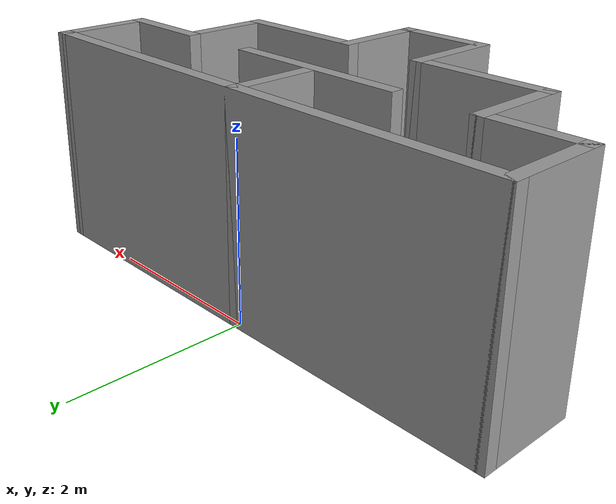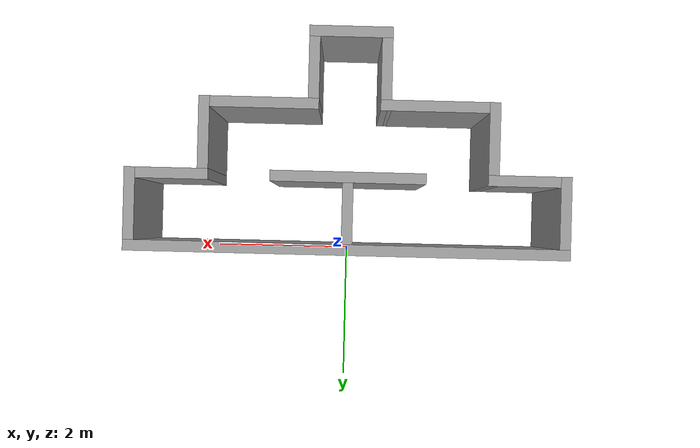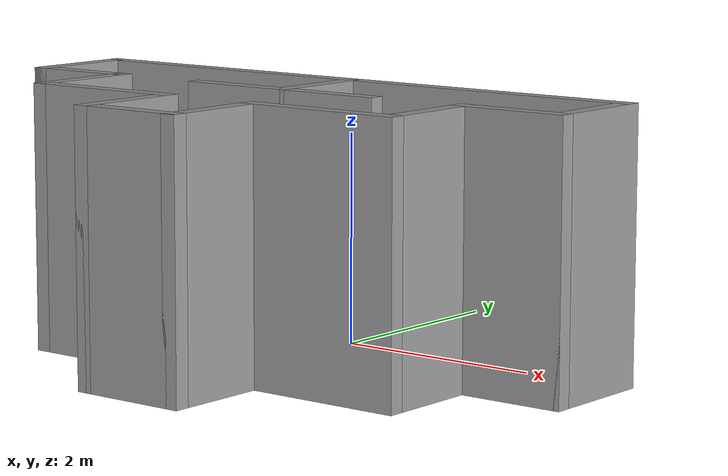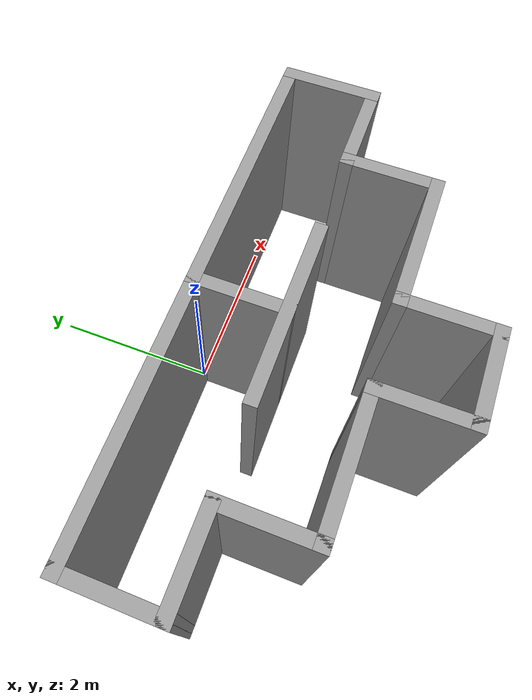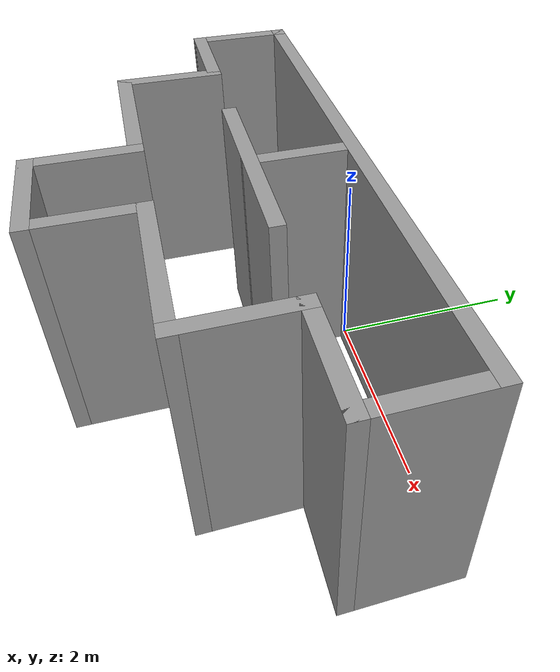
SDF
<?xml version='1.0'?>
<sdf version='1.7'>
  <model name='MiniTMaze'>
    <pose>0 -1.5 0 0 -0 0</pose>
    <link name='Wall_133'>
      <collision name='Wall_133_Collision'>
        <geometry>
          <box>
            <size>6.15 0.15 2.5</size>
          </box>
        </geometry>
        <pose>0 0 1.25 0 -0 0</pose>
      </collision>
      <visual name='Wall_133_Visual'>
        <pose>0 0 1.25 0 -0 0</pose>
        <geometry>
          <box>
            <size>6.15 0.15 2.5</size>
          </box>
        </geometry>
        <material>
          <script>
            <uri>file://media/materials/scripts/gazebo.material</uri>
            <name>Gazebo/Grey</name>
          </script>
          <ambient>1 1 1 1</ambient>
        </material>
        <meta>
          <layer>0</layer>
        </meta>
      </visual>
      <pose>0 1.5 0 0 -0 0</pose>
    </link>
    <link name='Wall_137'>
      <collision name='Wall_137_Collision'>
        <geometry>
          <box>
            <size>1.15 0.15 2.5</size>
          </box>
        </geometry>
        <pose>0 0 1.25 0 -0 0</pose>
      </collision>
      <visual name='Wall_137_Visual'>
        <pose>0 0 1.25 0 -0 0</pose>
        <geometry>
          <box>
            <size>1.15 0.15 2.5</size>
          </box>
        </geometry>
        <material>
          <script>
            <uri>file://media/materials/scripts/gazebo.material</uri>
            <name>Gazebo/Grey</name>
          </script>
          <ambient>1 1 1 1</ambient>
        </material>
        <meta>
          <layer>0</layer>
        </meta>
      </visual>
      <pose>3 1 0 0 -0 -1.5708</pose>
    </link>
    <link name='Wall_139'>
      <collision name='Wall_139_Collision'>
        <geometry>
          <box>
            <size>1.15 0.15 2.5</size>
          </box>
        </geometry>
        <pose>0 0 1.25 0 -0 0</pose>
      </collision>
      <visual name='Wall_139_Visual'>
        <pose>0 0 1.25 0 -0 0</pose>
        <geometry>
          <box>
            <size>1.15 0.15 2.5</size>
          </box>
        </geometry>
        <material>
          <script>
            <uri>file://media/materials/scripts/gazebo.material</uri>
            <name>Gazebo/Grey</name>
          </script>
          <ambient>1 1 1 1</ambient>
        </material>
        <meta>
          <layer>0</layer>
        </meta>
      </visual>
      <pose>-3 1 0 0 -0 -1.5708</pose>
    </link>
    <link name='Wall_140'>
      <collision name='Wall_140_Collision'>
        <geometry>
          <box>
            <size>1.15 0.15 2.5</size>
          </box>
        </geometry>
        <pose>0 0 1.25 0 -0 0</pose>
      </collision>
      <visual name='Wall_140_Visual'>
        <pose>0 0 1.25 0 -0 0</pose>
        <geometry>
          <box>
            <size>1.15 0.15 2.5</size>
          </box>
        </geometry>
        <material>
          <script>
            <uri>file://media/materials/scripts/gazebo.material</uri>
            <name>Gazebo/Grey</name>
          </script>
          <ambient>1 1 1 1</ambient>
        </material>
        <meta>
          <layer>0</layer>
        </meta>
      </visual>
      <pose>-2.5 0.5 0 0 -0 0</pose>
    </link>
    <link name='Wall_142'>
      <collision name='Wall_142_Collision'>
        <geometry>
          <box>
            <size>1.15 0.15 2.5</size>
          </box>
        </geometry>
        <pose>0 0 1.25 0 -0 0</pose>
      </collision>
      <visual name='Wall_142_Visual'>
        <pose>0 0 1.25 0 -0 0</pose>
        <geometry>
          <box>
            <size>1.15 0.15 2.5</size>
          </box>
        </geometry>
        <material>
          <script>
            <uri>file://media/materials/scripts/gazebo.material</uri>
            <name>Gazebo/Grey</name>
          </script>
          <ambient>1 1 1 1</ambient>
        </material>
        <meta>
          <layer>0</layer>
        </meta>
      </visual>
      <pose>2.5 0.5 0 0 -0 3.14159</pose>
    </link>
    <link name='Wall_146'>
      <collision name='Wall_146_Collision'>
        <geometry>
          <box>
            <size>2.15 0.15 2.5</size>
          </box>
        </geometry>
        <pose>0 0 1.25 0 -0 0</pose>
      </collision>
      <visual name='Wall_146_Visual'>
        <pose>0 0 1.25 0 -0 0</pose>
        <geometry>
          <box>
            <size>2.15 0.15 2.5</size>
          </box>
        </geometry>
        <material>
          <script>
            <uri>file://media/materials/scripts/gazebo.material</uri>
            <name>Gazebo/Grey</name>
          </script>
          <ambient>1 1 1 1</ambient>
        </material>
        <meta>
          <layer>0</layer>
        </meta>
      </visual>
      <pose>0 0.5 0 0 -0 3.14159</pose>
    </link>
    <link name='Wall_148'>
      <collision name='Wall_148_Collision'>
        <geometry>
          <box>
            <size>1.15 0.15 2.5</size>
          </box>
        </geometry>
        <pose>0 0 1.25 0 -0 0</pose>
      </collision>
      <visual name='Wall_148_Visual'>
        <pose>0 0 1.25 0 -0 0</pose>
        <geometry>
          <box>
            <size>1.15 0.15 2.5</size>
          </box>
        </geometry>
        <material>
          <script>
            <uri>file://media/materials/scripts/gazebo.material</uri>
            <name>Gazebo/Grey</name>
          </script>
          <ambient>1 1 1 1</ambient>
        </material>
        <meta>
          <layer>0</layer>
        </meta>
      </visual>
      <pose>0 1 0 0 -0 1.5708</pose>
    </link>
    <link name='Wall_150'>
      <collision name='Wall_150_Collision'>
        <geometry>
          <box>
            <size>1.15 0.15 2.5</size>
          </box>
        </geometry>
        <pose>0 0 1.25 0 -0 0</pose>
      </collision>
      <visual name='Wall_150_Visual'>
        <pose>0 0 1.25 0 -0 0</pose>
        <geometry>
          <box>
            <size>1.15 0.15 2.5</size>
          </box>
        </geometry>
        <material>
          <script>
            <uri>file://media/materials/scripts/gazebo.material</uri>
            <name>Gazebo/Grey</name>
          </script>
          <ambient>1 1 1 1</ambient>
        </material>
        <meta>
          <layer>0</layer>
        </meta>
      </visual>
      <pose>-2 0 0 0 -0 -1.5708</pose>
    </link>
    <link name='Wall_152'>
      <collision name='Wall_152_Collision'>
        <geometry>
          <box>
            <size>1.15 0.15 2.5</size>
          </box>
        </geometry>
        <pose>0 0 1.25 0 -0 0</pose>
      </collision>
      <visual name='Wall_152_Visual'>
        <pose>0 0 1.25 0 -0 0</pose>
        <geometry>
          <box>
            <size>1.15 0.15 2.5</size>
          </box>
        </geometry>
        <material>
          <script>
            <uri>file://media/materials/scripts/gazebo.material</uri>
            <name>Gazebo/Grey</name>
          </script>
          <ambient>1 1 1 1</ambient>
        </material>
        <meta>
          <layer>0</layer>
        </meta>
      </visual>
      <pose>2 0 0 0 -0 -1.5708</pose>
    </link>
    <link name='Wall_154'>
      <collision name='Wall_154_Collision'>
        <geometry>
          <box>
            <size>1.15 0.15 2.5</size>
          </box>
        </geometry>
        <pose>0 0 1.25 0 -0 0</pose>
      </collision>
      <visual name='Wall_154_Visual'>
        <pose>0 0 1.25 0 -0 0</pose>
        <geometry>
          <box>
            <size>1.15 0.15 2.5</size>
          </box>
        </geometry>
        <material>
          <script>
            <uri>file://media/materials/scripts/gazebo.material</uri>
            <name>Gazebo/Grey</name>
          </script>
          <ambient>1 1 1 1</ambient>
        </material>
        <meta>
          <layer>0</layer>
        </meta>
      </visual>
      <pose>0 -1.5 0 0 -0 0</pose>
    </link>
    <link name='Wall_156'>
      <collision name='Wall_156_Collision'>
        <geometry>
          <box>
            <size>1.65 0.15 2.5</size>
          </box>
        </geometry>
        <pose>0 0 1.25 0 -0 0</pose>
      </collision>
      <visual name='Wall_156_Visual'>
        <pose>0 0 1.25 0 -0 0</pose>
        <geometry>
          <box>
            <size>1.65 0.15 2.5</size>
          </box>
        </geometry>
        <material>
          <script>
            <uri>file://media/materials/scripts/gazebo.material</uri>
            <name>Gazebo/Grey</name>
          </script>
          <ambient>1 1 1 1</ambient>
        </material>
        <meta>
          <layer>0</layer>
        </meta>
      </visual>
      <pose>1.25 -0.5 0 0 -0 3.14159</pose>
    </link>
    <link name='Wall_158'>
      <collision name='Wall_158_Collision'>
        <geometry>
          <box>
            <size>1.65 0.15 2.5</size>
          </box>
        </geometry>
        <pose>0 0 1.25 0 -0 0</pose>
      </collision>
      <visual name='Wall_158_Visual'>
        <pose>0 0 1.25 0 -0 0</pose>
        <geometry>
          <box>
            <size>1.65 0.15 2.5</size>
          </box>
        </geometry>
        <material>
          <script>
            <uri>file://media/materials/scripts/gazebo.material</uri>
            <name>Gazebo/Grey</name>
          </script>
          <ambient>1 1 1 1</ambient>
        </material>
        <meta>
          <layer>0</layer>
        </meta>
      </visual>
      <pose>-1.25 -0.5 0 0 -0 0</pose>
    </link>
    <link name='Wall_160'>
      <collision name='Wall_160_Collision'>
        <geometry>
          <box>
            <size>1.15 0.15 2.5</size>
          </box>
        </geometry>
        <pose>0 0 1.25 0 -0 0</pose>
      </collision>
      <visual name='Wall_160_Visual'>
        <pose>0 0 1.25 0 -0 0</pose>
        <geometry>
          <box>
            <size>1.15 0.15 2.5</size>
          </box>
        </geometry>
        <material>
          <script>
            <uri>file://media/materials/scripts/gazebo.material</uri>
            <name>Gazebo/Grey</name>
          </script>
          <ambient>1 1 1 1</ambient>
        </material>
        <meta>
          <layer>0</layer>
        </meta>
      </visual>
      <pose>-0.5 -1 0 0 -0 -1.5708</pose>
    </link>
    <link name='Wall_162'>
      <collision name='Wall_162_Collision'>
        <geometry>
          <box>
            <size>1.15 0.15 2.5</size>
          </box>
        </geometry>
        <pose>0 0 1.25 0 -0 0</pose>
      </collision>
      <visual name='Wall_162_Visual'>
        <pose>0 0 1.25 0 -0 0</pose>
        <geometry>
          <box>
            <size>1.15 0.15 2.5</size>
          </box>
        </geometry>
        <material>
          <script>
            <uri>file://media/materials/scripts/gazebo.material</uri>
            <name>Gazebo/Grey</name>
          </script>
          <ambient>1 1 1 1</ambient>
        </material>
        <meta>
          <layer>0</layer>
        </meta>
      </visual>
      <pose>0.5 -1 0 0 -0 -1.5708</pose>
    </link>
    <static>1</static>
  </model>
</sdf>
